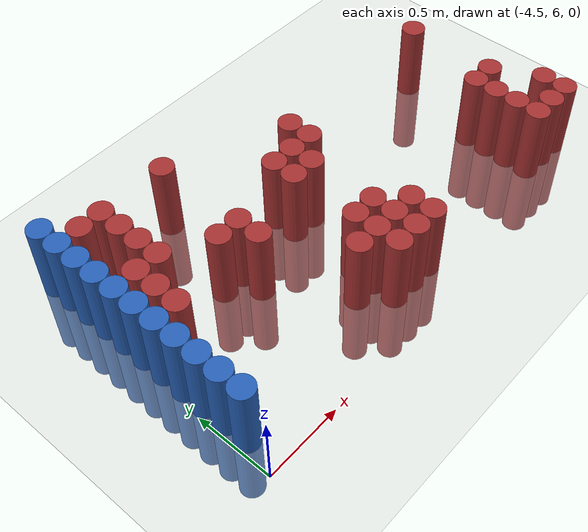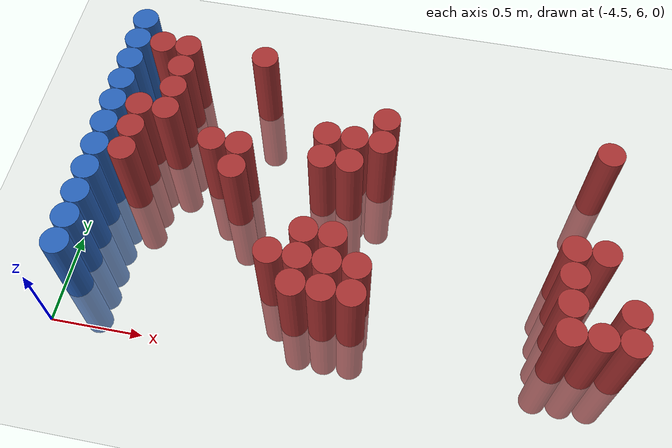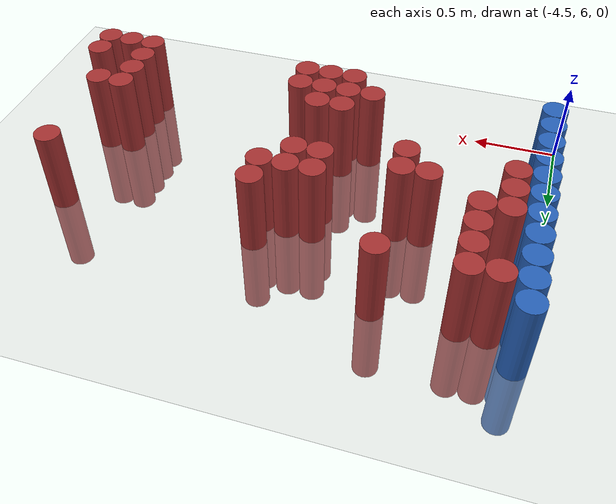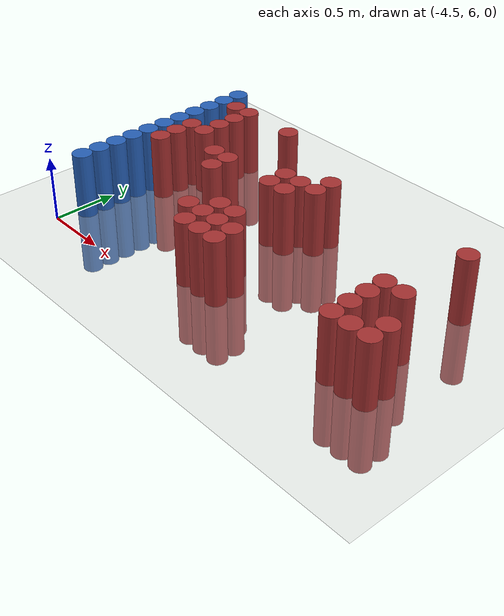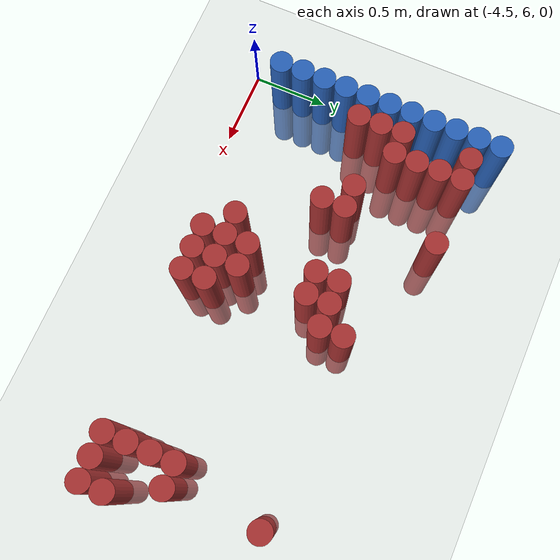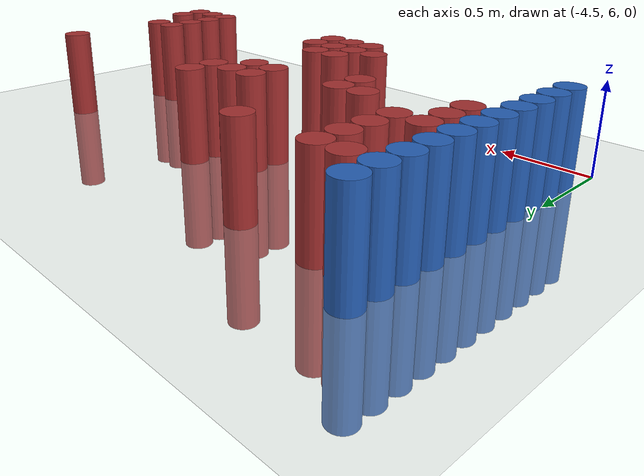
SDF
<sdf version="1.6">
 <world name="default">
  <model name="ground_plane">
   <static>1</static>
   <link name="link">
    <collision name="collision">
     <geometry><plane><normal>0 0 1</normal><size>100 100</size></plane></geometry>
     <surface><friction><ode><mu>100</mu><mu2>50</mu2></ode></friction></surface>
    </collision>
    <visual name="visual">
     <cast_shadows>0</cast_shadows>
     <geometry><plane><normal>0 0 1</normal><size>100 100</size></plane></geometry>
     <material>
      <script><uri>file://media/materials/scripts/gazebo.material</uri><name>Gazebo/Grey</name></script>
     </material>
    </visual>
   </link>
  </model>
  <model name="unit_cylinder_103">
   <static>1</static>
   <pose>-4.425000 6.225000 0.000000 0.000000 0.000000 0.000000</pose>
   <link name="link">
    <inertial>
     <mass>1</mass>
     <inertia><ixx>0.145833</ixx><ixy>0</ixy><ixz>0</ixz><iyy>0.145833</iyy><iyz>0</iyz><izz>0.125</izz></inertia>
    </inertial>
    <collision name="collision">
     <geometry><cylinder><radius>0.075000</radius><length>1</length></cylinder></geometry>
    </collision>
    <visual name="visual">
     <geometry><cylinder><radius>0.075000</radius><length>1</length></cylinder></geometry>
     <material>
      <ambient>0.152000 0.379000 0.720000 1</ambient>
      <diffuse>0.152000 0.379000 0.720000 1</diffuse>
     </material>
     <material>
      <script><name>Gazebo/Grey</name><uri>file://media/materials/scripts/gazebo.material</uri></script>
     </material>
    </visual>
   </link>
  </model>
  <model name="unit_cylinder_104">
   <static>1</static>
   <pose>-4.425000 6.375000 0.000000 0.000000 0.000000 0.000000</pose>
   <link name="link">
    <inertial>
     <mass>1</mass>
     <inertia><ixx>0.145833</ixx><ixy>0</ixy><ixz>0</ixz><iyy>0.145833</iyy><iyz>0</iyz><izz>0.125</izz></inertia>
    </inertial>
    <collision name="collision">
     <geometry><cylinder><radius>0.075000</radius><length>1</length></cylinder></geometry>
    </collision>
    <visual name="visual">
     <geometry><cylinder><radius>0.075000</radius><length>1</length></cylinder></geometry>
     <material>
      <ambient>0.152000 0.379000 0.720000 1</ambient>
      <diffuse>0.152000 0.379000 0.720000 1</diffuse>
     </material>
     <material>
      <script><name>Gazebo/Grey</name><uri>file://media/materials/scripts/gazebo.material</uri></script>
     </material>
    </visual>
   </link>
  </model>
  <model name="unit_cylinder_105">
   <static>1</static>
   <pose>-4.425000 6.525000 0.000000 0.000000 0.000000 0.000000</pose>
   <link name="link">
    <inertial>
     <mass>1</mass>
     <inertia><ixx>0.145833</ixx><ixy>0</ixy><ixz>0</ixz><iyy>0.145833</iyy><iyz>0</iyz><izz>0.125</izz></inertia>
    </inertial>
    <collision name="collision">
     <geometry><cylinder><radius>0.075000</radius><length>1</length></cylinder></geometry>
    </collision>
    <visual name="visual">
     <geometry><cylinder><radius>0.075000</radius><length>1</length></cylinder></geometry>
     <material>
      <ambient>0.152000 0.379000 0.720000 1</ambient>
      <diffuse>0.152000 0.379000 0.720000 1</diffuse>
     </material>
     <material>
      <script><name>Gazebo/Grey</name><uri>file://media/materials/scripts/gazebo.material</uri></script>
     </material>
    </visual>
   </link>
  </model>
  <model name="unit_cylinder_106">
   <static>1</static>
   <pose>-4.425000 6.675000 0.000000 0.000000 0.000000 0.000000</pose>
   <link name="link">
    <inertial>
     <mass>1</mass>
     <inertia><ixx>0.145833</ixx><ixy>0</ixy><ixz>0</ixz><iyy>0.145833</iyy><iyz>0</iyz><izz>0.125</izz></inertia>
    </inertial>
    <collision name="collision">
     <geometry><cylinder><radius>0.075000</radius><length>1</length></cylinder></geometry>
    </collision>
    <visual name="visual">
     <geometry><cylinder><radius>0.075000</radius><length>1</length></cylinder></geometry>
     <material>
      <ambient>0.152000 0.379000 0.720000 1</ambient>
      <diffuse>0.152000 0.379000 0.720000 1</diffuse>
     </material>
     <material>
      <script><name>Gazebo/Grey</name><uri>file://media/materials/scripts/gazebo.material</uri></script>
     </material>
    </visual>
   </link>
  </model>
  <model name="unit_cylinder_107">
   <static>1</static>
   <pose>-4.425000 6.825000 0.000000 0.000000 0.000000 0.000000</pose>
   <link name="link">
    <inertial>
     <mass>1</mass>
     <inertia><ixx>0.145833</ixx><ixy>0</ixy><ixz>0</ixz><iyy>0.145833</iyy><iyz>0</iyz><izz>0.125</izz></inertia>
    </inertial>
    <collision name="collision">
     <geometry><cylinder><radius>0.075000</radius><length>1</length></cylinder></geometry>
    </collision>
    <visual name="visual">
     <geometry><cylinder><radius>0.075000</radius><length>1</length></cylinder></geometry>
     <material>
      <ambient>0.152000 0.379000 0.720000 1</ambient>
      <diffuse>0.152000 0.379000 0.720000 1</diffuse>
     </material>
     <material>
      <script><name>Gazebo/Grey</name><uri>file://media/materials/scripts/gazebo.material</uri></script>
     </material>
    </visual>
   </link>
  </model>
  <model name="unit_cylinder_108">
   <static>1</static>
   <pose>-4.425000 6.975000 0.000000 0.000000 0.000000 0.000000</pose>
   <link name="link">
    <inertial>
     <mass>1</mass>
     <inertia><ixx>0.145833</ixx><ixy>0</ixy><ixz>0</ixz><iyy>0.145833</iyy><iyz>0</iyz><izz>0.125</izz></inertia>
    </inertial>
    <collision name="collision">
     <geometry><cylinder><radius>0.075000</radius><length>1</length></cylinder></geometry>
    </collision>
    <visual name="visual">
     <geometry><cylinder><radius>0.075000</radius><length>1</length></cylinder></geometry>
     <material>
      <ambient>0.152000 0.379000 0.720000 1</ambient>
      <diffuse>0.152000 0.379000 0.720000 1</diffuse>
     </material>
     <material>
      <script><name>Gazebo/Grey</name><uri>file://media/materials/scripts/gazebo.material</uri></script>
     </material>
    </visual>
   </link>
  </model>
  <model name="unit_cylinder_109">
   <static>1</static>
   <pose>-4.425000 7.125000 0.000000 0.000000 0.000000 0.000000</pose>
   <link name="link">
    <inertial>
     <mass>1</mass>
     <inertia><ixx>0.145833</ixx><ixy>0</ixy><ixz>0</ixz><iyy>0.145833</iyy><iyz>0</iyz><izz>0.125</izz></inertia>
    </inertial>
    <collision name="collision">
     <geometry><cylinder><radius>0.075000</radius><length>1</length></cylinder></geometry>
    </collision>
    <visual name="visual">
     <geometry><cylinder><radius>0.075000</radius><length>1</length></cylinder></geometry>
     <material>
      <ambient>0.152000 0.379000 0.720000 1</ambient>
      <diffuse>0.152000 0.379000 0.720000 1</diffuse>
     </material>
     <material>
      <script><name>Gazebo/Grey</name><uri>file://media/materials/scripts/gazebo.material</uri></script>
     </material>
    </visual>
   </link>
  </model>
  <model name="unit_cylinder_110">
   <static>1</static>
   <pose>-4.425000 7.275000 0.000000 0.000000 0.000000 0.000000</pose>
   <link name="link">
    <inertial>
     <mass>1</mass>
     <inertia><ixx>0.145833</ixx><ixy>0</ixy><ixz>0</ixz><iyy>0.145833</iyy><iyz>0</iyz><izz>0.125</izz></inertia>
    </inertial>
    <collision name="collision">
     <geometry><cylinder><radius>0.075000</radius><length>1</length></cylinder></geometry>
    </collision>
    <visual name="visual">
     <geometry><cylinder><radius>0.075000</radius><length>1</length></cylinder></geometry>
     <material>
      <ambient>0.152000 0.379000 0.720000 1</ambient>
      <diffuse>0.152000 0.379000 0.720000 1</diffuse>
     </material>
     <material>
      <script><name>Gazebo/Grey</name><uri>file://media/materials/scripts/gazebo.material</uri></script>
     </material>
    </visual>
   </link>
  </model>
  <model name="unit_cylinder_111">
   <static>1</static>
   <pose>-4.425000 7.425000 0.000000 0.000000 0.000000 0.000000</pose>
   <link name="link">
    <inertial>
     <mass>1</mass>
     <inertia><ixx>0.145833</ixx><ixy>0</ixy><ixz>0</ixz><iyy>0.145833</iyy><iyz>0</iyz><izz>0.125</izz></inertia>
    </inertial>
    <collision name="collision">
     <geometry><cylinder><radius>0.075000</radius><length>1</length></cylinder></geometry>
    </collision>
    <visual name="visual">
     <geometry><cylinder><radius>0.075000</radius><length>1</length></cylinder></geometry>
     <material>
      <ambient>0.152000 0.379000 0.720000 1</ambient>
      <diffuse>0.152000 0.379000 0.720000 1</diffuse>
     </material>
     <material>
      <script><name>Gazebo/Grey</name><uri>file://media/materials/scripts/gazebo.material</uri></script>
     </material>
    </visual>
   </link>
  </model>
  <model name="unit_cylinder_112">
   <static>1</static>
   <pose>-4.425000 7.575000 0.000000 0.000000 0.000000 0.000000</pose>
   <link name="link">
    <inertial>
     <mass>1</mass>
     <inertia><ixx>0.145833</ixx><ixy>0</ixy><ixz>0</ixz><iyy>0.145833</iyy><iyz>0</iyz><izz>0.125</izz></inertia>
    </inertial>
    <collision name="collision">
     <geometry><cylinder><radius>0.075000</radius><length>1</length></cylinder></geometry>
    </collision>
    <visual name="visual">
     <geometry><cylinder><radius>0.075000</radius><length>1</length></cylinder></geometry>
     <material>
      <ambient>0.152000 0.379000 0.720000 1</ambient>
      <diffuse>0.152000 0.379000 0.720000 1</diffuse>
     </material>
     <material>
      <script><name>Gazebo/Grey</name><uri>file://media/materials/scripts/gazebo.material</uri></script>
     </material>
    </visual>
   </link>
  </model>
  <model name="unit_cylinder_113">
   <static>1</static>
   <pose>-4.425000 7.725000 0.000000 0.000000 0.000000 0.000000</pose>
   <link name="link">
    <inertial>
     <mass>1</mass>
     <inertia><ixx>0.145833</ixx><ixy>0</ixy><ixz>0</ixz><iyy>0.145833</iyy><iyz>0</iyz><izz>0.125</izz></inertia>
    </inertial>
    <collision name="collision">
     <geometry><cylinder><radius>0.075000</radius><length>1</length></cylinder></geometry>
    </collision>
    <visual name="visual">
     <geometry><cylinder><radius>0.075000</radius><length>1</length></cylinder></geometry>
     <material>
      <ambient>0.152000 0.379000 0.720000 1</ambient>
      <diffuse>0.152000 0.379000 0.720000 1</diffuse>
     </material>
     <material>
      <script><name>Gazebo/Grey</name><uri>file://media/materials/scripts/gazebo.material</uri></script>
     </material>
    </visual>
   </link>
  </model>
  <model name="unit_cylinder_130">
   <static>1</static>
   <pose>-4.275000 6.825000 0.000000 0.000000 0.000000 0.000000</pose>
   <link name="link">
    <inertial>
     <mass>1</mass>
     <inertia><ixx>0.145833</ixx><ixy>0</ixy><ixz>0</ixz><iyy>0.145833</iyy><iyz>0</iyz><izz>0.125</izz></inertia>
    </inertial>
    <collision name="collision">
     <geometry><cylinder><radius>0.075000</radius><length>1</length></cylinder></geometry>
    </collision>
    <visual name="visual">
     <geometry><cylinder><radius>0.075000</radius><length>1</length></cylinder></geometry>
     <material>
      <ambient>0.648000 0.192000 0.192000 1</ambient>
      <diffuse>0.648000 0.192000 0.192000 1</diffuse>
     </material>
     <material>
      <script><name>Gazebo/Grey</name><uri>file://media/materials/scripts/gazebo.material</uri></script>
     </material>
    </visual>
   </link>
  </model>
  <model name="unit_cylinder_131">
   <static>1</static>
   <pose>-4.275000 6.975000 0.000000 0.000000 0.000000 0.000000</pose>
   <link name="link">
    <inertial>
     <mass>1</mass>
     <inertia><ixx>0.145833</ixx><ixy>0</ixy><ixz>0</ixz><iyy>0.145833</iyy><iyz>0</iyz><izz>0.125</izz></inertia>
    </inertial>
    <collision name="collision">
     <geometry><cylinder><radius>0.075000</radius><length>1</length></cylinder></geometry>
    </collision>
    <visual name="visual">
     <geometry><cylinder><radius>0.075000</radius><length>1</length></cylinder></geometry>
     <material>
      <ambient>0.648000 0.192000 0.192000 1</ambient>
      <diffuse>0.648000 0.192000 0.192000 1</diffuse>
     </material>
     <material>
      <script><name>Gazebo/Grey</name><uri>file://media/materials/scripts/gazebo.material</uri></script>
     </material>
    </visual>
   </link>
  </model>
  <model name="unit_cylinder_132">
   <static>1</static>
   <pose>-4.275000 7.125000 0.000000 0.000000 0.000000 0.000000</pose>
   <link name="link">
    <inertial>
     <mass>1</mass>
     <inertia><ixx>0.145833</ixx><ixy>0</ixy><ixz>0</ixz><iyy>0.145833</iyy><iyz>0</iyz><izz>0.125</izz></inertia>
    </inertial>
    <collision name="collision">
     <geometry><cylinder><radius>0.075000</radius><length>1</length></cylinder></geometry>
    </collision>
    <visual name="visual">
     <geometry><cylinder><radius>0.075000</radius><length>1</length></cylinder></geometry>
     <material>
      <ambient>0.648000 0.192000 0.192000 1</ambient>
      <diffuse>0.648000 0.192000 0.192000 1</diffuse>
     </material>
     <material>
      <script><name>Gazebo/Grey</name><uri>file://media/materials/scripts/gazebo.material</uri></script>
     </material>
    </visual>
   </link>
  </model>
  <model name="unit_cylinder_133">
   <static>1</static>
   <pose>-4.275000 7.575000 0.000000 0.000000 0.000000 0.000000</pose>
   <link name="link">
    <inertial>
     <mass>1</mass>
     <inertia><ixx>0.145833</ixx><ixy>0</ixy><ixz>0</ixz><iyy>0.145833</iyy><iyz>0</iyz><izz>0.125</izz></inertia>
    </inertial>
    <collision name="collision">
     <geometry><cylinder><radius>0.075000</radius><length>1</length></cylinder></geometry>
    </collision>
    <visual name="visual">
     <geometry><cylinder><radius>0.075000</radius><length>1</length></cylinder></geometry>
     <material>
      <ambient>0.648000 0.192000 0.192000 1</ambient>
      <diffuse>0.648000 0.192000 0.192000 1</diffuse>
     </material>
     <material>
      <script><name>Gazebo/Grey</name><uri>file://media/materials/scripts/gazebo.material</uri></script>
     </material>
    </visual>
   </link>
  </model>
  <model name="unit_cylinder_143">
   <static>1</static>
   <pose>-4.125000 7.125000 0.000000 0.000000 0.000000 0.000000</pose>
   <link name="link">
    <inertial>
     <mass>1</mass>
     <inertia><ixx>0.145833</ixx><ixy>0</ixy><ixz>0</ixz><iyy>0.145833</iyy><iyz>0</iyz><izz>0.125</izz></inertia>
    </inertial>
    <collision name="collision">
     <geometry><cylinder><radius>0.075000</radius><length>1</length></cylinder></geometry>
    </collision>
    <visual name="visual">
     <geometry><cylinder><radius>0.075000</radius><length>1</length></cylinder></geometry>
     <material>
      <ambient>0.648000 0.192000 0.192000 1</ambient>
      <diffuse>0.648000 0.192000 0.192000 1</diffuse>
     </material>
     <material>
      <script><name>Gazebo/Grey</name><uri>file://media/materials/scripts/gazebo.material</uri></script>
     </material>
    </visual>
   </link>
  </model>
  <model name="unit_cylinder_144">
   <static>1</static>
   <pose>-4.125000 7.275000 0.000000 0.000000 0.000000 0.000000</pose>
   <link name="link">
    <inertial>
     <mass>1</mass>
     <inertia><ixx>0.145833</ixx><ixy>0</ixy><ixz>0</ixz><iyy>0.145833</iyy><iyz>0</iyz><izz>0.125</izz></inertia>
    </inertial>
    <collision name="collision">
     <geometry><cylinder><radius>0.075000</radius><length>1</length></cylinder></geometry>
    </collision>
    <visual name="visual">
     <geometry><cylinder><radius>0.075000</radius><length>1</length></cylinder></geometry>
     <material>
      <ambient>0.648000 0.192000 0.192000 1</ambient>
      <diffuse>0.648000 0.192000 0.192000 1</diffuse>
     </material>
     <material>
      <script><name>Gazebo/Grey</name><uri>file://media/materials/scripts/gazebo.material</uri></script>
     </material>
    </visual>
   </link>
  </model>
  <model name="unit_cylinder_145">
   <static>1</static>
   <pose>-4.125000 7.425000 0.000000 0.000000 0.000000 0.000000</pose>
   <link name="link">
    <inertial>
     <mass>1</mass>
     <inertia><ixx>0.145833</ixx><ixy>0</ixy><ixz>0</ixz><iyy>0.145833</iyy><iyz>0</iyz><izz>0.125</izz></inertia>
    </inertial>
    <collision name="collision">
     <geometry><cylinder><radius>0.075000</radius><length>1</length></cylinder></geometry>
    </collision>
    <visual name="visual">
     <geometry><cylinder><radius>0.075000</radius><length>1</length></cylinder></geometry>
     <material>
      <ambient>0.648000 0.192000 0.192000 1</ambient>
      <diffuse>0.648000 0.192000 0.192000 1</diffuse>
     </material>
     <material>
      <script><name>Gazebo/Grey</name><uri>file://media/materials/scripts/gazebo.material</uri></script>
     </material>
    </visual>
   </link>
  </model>
  <model name="unit_cylinder_146">
   <static>1</static>
   <pose>-4.125000 7.575000 0.000000 0.000000 0.000000 0.000000</pose>
   <link name="link">
    <inertial>
     <mass>1</mass>
     <inertia><ixx>0.145833</ixx><ixy>0</ixy><ixz>0</ixz><iyy>0.145833</iyy><iyz>0</iyz><izz>0.125</izz></inertia>
    </inertial>
    <collision name="collision">
     <geometry><cylinder><radius>0.075000</radius><length>1</length></cylinder></geometry>
    </collision>
    <visual name="visual">
     <geometry><cylinder><radius>0.075000</radius><length>1</length></cylinder></geometry>
     <material>
      <ambient>0.648000 0.192000 0.192000 1</ambient>
      <diffuse>0.648000 0.192000 0.192000 1</diffuse>
     </material>
     <material>
      <script><name>Gazebo/Grey</name><uri>file://media/materials/scripts/gazebo.material</uri></script>
     </material>
    </visual>
   </link>
  </model>
  <model name="unit_cylinder_148">
   <static>1</static>
   <pose>-3.825000 6.975000 0.000000 0.000000 0.000000 0.000000</pose>
   <link name="link">
    <inertial>
     <mass>1</mass>
     <inertia><ixx>0.145833</ixx><ixy>0</ixy><ixz>0</ixz><iyy>0.145833</iyy><iyz>0</iyz><izz>0.125</izz></inertia>
    </inertial>
    <collision name="collision">
     <geometry><cylinder><radius>0.075000</radius><length>1</length></cylinder></geometry>
    </collision>
    <visual name="visual">
     <geometry><cylinder><radius>0.075000</radius><length>1</length></cylinder></geometry>
     <material>
      <ambient>0.648000 0.192000 0.192000 1</ambient>
      <diffuse>0.648000 0.192000 0.192000 1</diffuse>
     </material>
     <material>
      <script><name>Gazebo/Grey</name><uri>file://media/materials/scripts/gazebo.material</uri></script>
     </material>
    </visual>
   </link>
  </model>
  <model name="unit_cylinder_152">
   <static>1</static>
   <pose>-3.675000 6.825000 0.000000 0.000000 0.000000 0.000000</pose>
   <link name="link">
    <inertial>
     <mass>1</mass>
     <inertia><ixx>0.145833</ixx><ixy>0</ixy><ixz>0</ixz><iyy>0.145833</iyy><iyz>0</iyz><izz>0.125</izz></inertia>
    </inertial>
    <collision name="collision">
     <geometry><cylinder><radius>0.075000</radius><length>1</length></cylinder></geometry>
    </collision>
    <visual name="visual">
     <geometry><cylinder><radius>0.075000</radius><length>1</length></cylinder></geometry>
     <material>
      <ambient>0.648000 0.192000 0.192000 1</ambient>
      <diffuse>0.648000 0.192000 0.192000 1</diffuse>
     </material>
     <material>
      <script><name>Gazebo/Grey</name><uri>file://media/materials/scripts/gazebo.material</uri></script>
     </material>
    </visual>
   </link>
  </model>
  <model name="unit_cylinder_153">
   <static>1</static>
   <pose>-3.675000 6.975000 0.000000 0.000000 0.000000 0.000000</pose>
   <link name="link">
    <inertial>
     <mass>1</mass>
     <inertia><ixx>0.145833</ixx><ixy>0</ixy><ixz>0</ixz><iyy>0.145833</iyy><iyz>0</iyz><izz>0.125</izz></inertia>
    </inertial>
    <collision name="collision">
     <geometry><cylinder><radius>0.075000</radius><length>1</length></cylinder></geometry>
    </collision>
    <visual name="visual">
     <geometry><cylinder><radius>0.075000</radius><length>1</length></cylinder></geometry>
     <material>
      <ambient>0.648000 0.192000 0.192000 1</ambient>
      <diffuse>0.648000 0.192000 0.192000 1</diffuse>
     </material>
     <material>
      <script><name>Gazebo/Grey</name><uri>file://media/materials/scripts/gazebo.material</uri></script>
     </material>
    </visual>
   </link>
  </model>
  <model name="unit_cylinder_154">
   <static>1</static>
   <pose>-3.675000 7.575000 0.000000 0.000000 0.000000 0.000000</pose>
   <link name="link">
    <inertial>
     <mass>1</mass>
     <inertia><ixx>0.145833</ixx><ixy>0</ixy><ixz>0</ixz><iyy>0.145833</iyy><iyz>0</iyz><izz>0.125</izz></inertia>
    </inertial>
    <collision name="collision">
     <geometry><cylinder><radius>0.075000</radius><length>1</length></cylinder></geometry>
    </collision>
    <visual name="visual">
     <geometry><cylinder><radius>0.075000</radius><length>1</length></cylinder></geometry>
     <material>
      <ambient>0.648000 0.192000 0.192000 1</ambient>
      <diffuse>0.648000 0.192000 0.192000 1</diffuse>
     </material>
     <material>
      <script><name>Gazebo/Grey</name><uri>file://media/materials/scripts/gazebo.material</uri></script>
     </material>
    </visual>
   </link>
  </model>
  <model name="unit_cylinder_171">
   <static>1</static>
   <pose>-3.375000 6.375000 0.000000 0.000000 0.000000 0.000000</pose>
   <link name="link">
    <inertial>
     <mass>1</mass>
     <inertia><ixx>0.145833</ixx><ixy>0</ixy><ixz>0</ixz><iyy>0.145833</iyy><iyz>0</iyz><izz>0.125</izz></inertia>
    </inertial>
    <collision name="collision">
     <geometry><cylinder><radius>0.075000</radius><length>1</length></cylinder></geometry>
    </collision>
    <visual name="visual">
     <geometry><cylinder><radius>0.075000</radius><length>1</length></cylinder></geometry>
     <material>
      <ambient>0.648000 0.192000 0.192000 1</ambient>
      <diffuse>0.648000 0.192000 0.192000 1</diffuse>
     </material>
     <material>
      <script><name>Gazebo/Grey</name><uri>file://media/materials/scripts/gazebo.material</uri></script>
     </material>
    </visual>
   </link>
  </model>
  <model name="unit_cylinder_181">
   <static>1</static>
   <pose>-3.225000 6.225000 0.000000 0.000000 0.000000 0.000000</pose>
   <link name="link">
    <inertial>
     <mass>1</mass>
     <inertia><ixx>0.145833</ixx><ixy>0</ixy><ixz>0</ixz><iyy>0.145833</iyy><iyz>0</iyz><izz>0.125</izz></inertia>
    </inertial>
    <collision name="collision">
     <geometry><cylinder><radius>0.075000</radius><length>1</length></cylinder></geometry>
    </collision>
    <visual name="visual">
     <geometry><cylinder><radius>0.075000</radius><length>1</length></cylinder></geometry>
     <material>
      <ambient>0.648000 0.192000 0.192000 1</ambient>
      <diffuse>0.648000 0.192000 0.192000 1</diffuse>
     </material>
     <material>
      <script><name>Gazebo/Grey</name><uri>file://media/materials/scripts/gazebo.material</uri></script>
     </material>
    </visual>
   </link>
  </model>
  <model name="unit_cylinder_182">
   <static>1</static>
   <pose>-3.225000 6.375000 0.000000 0.000000 0.000000 0.000000</pose>
   <link name="link">
    <inertial>
     <mass>1</mass>
     <inertia><ixx>0.145833</ixx><ixy>0</ixy><ixz>0</ixz><iyy>0.145833</iyy><iyz>0</iyz><izz>0.125</izz></inertia>
    </inertial>
    <collision name="collision">
     <geometry><cylinder><radius>0.075000</radius><length>1</length></cylinder></geometry>
    </collision>
    <visual name="visual">
     <geometry><cylinder><radius>0.075000</radius><length>1</length></cylinder></geometry>
     <material>
      <ambient>0.648000 0.192000 0.192000 1</ambient>
      <diffuse>0.648000 0.192000 0.192000 1</diffuse>
     </material>
     <material>
      <script><name>Gazebo/Grey</name><uri>file://media/materials/scripts/gazebo.material</uri></script>
     </material>
    </visual>
   </link>
  </model>
  <model name="unit_cylinder_183">
   <static>1</static>
   <pose>-3.225000 6.525000 0.000000 0.000000 0.000000 0.000000</pose>
   <link name="link">
    <inertial>
     <mass>1</mass>
     <inertia><ixx>0.145833</ixx><ixy>0</ixy><ixz>0</ixz><iyy>0.145833</iyy><iyz>0</iyz><izz>0.125</izz></inertia>
    </inertial>
    <collision name="collision">
     <geometry><cylinder><radius>0.075000</radius><length>1</length></cylinder></geometry>
    </collision>
    <visual name="visual">
     <geometry><cylinder><radius>0.075000</radius><length>1</length></cylinder></geometry>
     <material>
      <ambient>0.648000 0.192000 0.192000 1</ambient>
      <diffuse>0.648000 0.192000 0.192000 1</diffuse>
     </material>
     <material>
      <script><name>Gazebo/Grey</name><uri>file://media/materials/scripts/gazebo.material</uri></script>
     </material>
    </visual>
   </link>
  </model>
  <model name="unit_cylinder_184">
   <static>1</static>
   <pose>-3.225000 6.975000 0.000000 0.000000 0.000000 0.000000</pose>
   <link name="link">
    <inertial>
     <mass>1</mass>
     <inertia><ixx>0.145833</ixx><ixy>0</ixy><ixz>0</ixz><iyy>0.145833</iyy><iyz>0</iyz><izz>0.125</izz></inertia>
    </inertial>
    <collision name="collision">
     <geometry><cylinder><radius>0.075000</radius><length>1</length></cylinder></geometry>
    </collision>
    <visual name="visual">
     <geometry><cylinder><radius>0.075000</radius><length>1</length></cylinder></geometry>
     <material>
      <ambient>0.648000 0.192000 0.192000 1</ambient>
      <diffuse>0.648000 0.192000 0.192000 1</diffuse>
     </material>
     <material>
      <script><name>Gazebo/Grey</name><uri>file://media/materials/scripts/gazebo.material</uri></script>
     </material>
    </visual>
   </link>
  </model>
  <model name="unit_cylinder_185">
   <static>1</static>
   <pose>-3.225000 7.125000 0.000000 0.000000 0.000000 0.000000</pose>
   <link name="link">
    <inertial>
     <mass>1</mass>
     <inertia><ixx>0.145833</ixx><ixy>0</ixy><ixz>0</ixz><iyy>0.145833</iyy><iyz>0</iyz><izz>0.125</izz></inertia>
    </inertial>
    <collision name="collision">
     <geometry><cylinder><radius>0.075000</radius><length>1</length></cylinder></geometry>
    </collision>
    <visual name="visual">
     <geometry><cylinder><radius>0.075000</radius><length>1</length></cylinder></geometry>
     <material>
      <ambient>0.648000 0.192000 0.192000 1</ambient>
      <diffuse>0.648000 0.192000 0.192000 1</diffuse>
     </material>
     <material>
      <script><name>Gazebo/Grey</name><uri>file://media/materials/scripts/gazebo.material</uri></script>
     </material>
    </visual>
   </link>
  </model>
  <model name="unit_cylinder_190">
   <static>1</static>
   <pose>-3.075000 6.225000 0.000000 0.000000 0.000000 0.000000</pose>
   <link name="link">
    <inertial>
     <mass>1</mass>
     <inertia><ixx>0.145833</ixx><ixy>0</ixy><ixz>0</ixz><iyy>0.145833</iyy><iyz>0</iyz><izz>0.125</izz></inertia>
    </inertial>
    <collision name="collision">
     <geometry><cylinder><radius>0.075000</radius><length>1</length></cylinder></geometry>
    </collision>
    <visual name="visual">
     <geometry><cylinder><radius>0.075000</radius><length>1</length></cylinder></geometry>
     <material>
      <ambient>0.648000 0.192000 0.192000 1</ambient>
      <diffuse>0.648000 0.192000 0.192000 1</diffuse>
     </material>
     <material>
      <script><name>Gazebo/Grey</name><uri>file://media/materials/scripts/gazebo.material</uri></script>
     </material>
    </visual>
   </link>
  </model>
  <model name="unit_cylinder_191">
   <static>1</static>
   <pose>-3.075000 6.375000 0.000000 0.000000 0.000000 0.000000</pose>
   <link name="link">
    <inertial>
     <mass>1</mass>
     <inertia><ixx>0.145833</ixx><ixy>0</ixy><ixz>0</ixz><iyy>0.145833</iyy><iyz>0</iyz><izz>0.125</izz></inertia>
    </inertial>
    <collision name="collision">
     <geometry><cylinder><radius>0.075000</radius><length>1</length></cylinder></geometry>
    </collision>
    <visual name="visual">
     <geometry><cylinder><radius>0.075000</radius><length>1</length></cylinder></geometry>
     <material>
      <ambient>0.648000 0.192000 0.192000 1</ambient>
      <diffuse>0.648000 0.192000 0.192000 1</diffuse>
     </material>
     <material>
      <script><name>Gazebo/Grey</name><uri>file://media/materials/scripts/gazebo.material</uri></script>
     </material>
    </visual>
   </link>
  </model>
  <model name="unit_cylinder_192">
   <static>1</static>
   <pose>-3.075000 6.525000 0.000000 0.000000 0.000000 0.000000</pose>
   <link name="link">
    <inertial>
     <mass>1</mass>
     <inertia><ixx>0.145833</ixx><ixy>0</ixy><ixz>0</ixz><iyy>0.145833</iyy><iyz>0</iyz><izz>0.125</izz></inertia>
    </inertial>
    <collision name="collision">
     <geometry><cylinder><radius>0.075000</radius><length>1</length></cylinder></geometry>
    </collision>
    <visual name="visual">
     <geometry><cylinder><radius>0.075000</radius><length>1</length></cylinder></geometry>
     <material>
      <ambient>0.648000 0.192000 0.192000 1</ambient>
      <diffuse>0.648000 0.192000 0.192000 1</diffuse>
     </material>
     <material>
      <script><name>Gazebo/Grey</name><uri>file://media/materials/scripts/gazebo.material</uri></script>
     </material>
    </visual>
   </link>
  </model>
  <model name="unit_cylinder_193">
   <static>1</static>
   <pose>-3.075000 6.975000 0.000000 0.000000 0.000000 0.000000</pose>
   <link name="link">
    <inertial>
     <mass>1</mass>
     <inertia><ixx>0.145833</ixx><ixy>0</ixy><ixz>0</ixz><iyy>0.145833</iyy><iyz>0</iyz><izz>0.125</izz></inertia>
    </inertial>
    <collision name="collision">
     <geometry><cylinder><radius>0.075000</radius><length>1</length></cylinder></geometry>
    </collision>
    <visual name="visual">
     <geometry><cylinder><radius>0.075000</radius><length>1</length></cylinder></geometry>
     <material>
      <ambient>0.648000 0.192000 0.192000 1</ambient>
      <diffuse>0.648000 0.192000 0.192000 1</diffuse>
     </material>
     <material>
      <script><name>Gazebo/Grey</name><uri>file://media/materials/scripts/gazebo.material</uri></script>
     </material>
    </visual>
   </link>
  </model>
  <model name="unit_cylinder_194">
   <static>1</static>
   <pose>-3.075000 7.125000 0.000000 0.000000 0.000000 0.000000</pose>
   <link name="link">
    <inertial>
     <mass>1</mass>
     <inertia><ixx>0.145833</ixx><ixy>0</ixy><ixz>0</ixz><iyy>0.145833</iyy><iyz>0</iyz><izz>0.125</izz></inertia>
    </inertial>
    <collision name="collision">
     <geometry><cylinder><radius>0.075000</radius><length>1</length></cylinder></geometry>
    </collision>
    <visual name="visual">
     <geometry><cylinder><radius>0.075000</radius><length>1</length></cylinder></geometry>
     <material>
      <ambient>0.648000 0.192000 0.192000 1</ambient>
      <diffuse>0.648000 0.192000 0.192000 1</diffuse>
     </material>
     <material>
      <script><name>Gazebo/Grey</name><uri>file://media/materials/scripts/gazebo.material</uri></script>
     </material>
    </visual>
   </link>
  </model>
  <model name="unit_cylinder_196">
   <static>1</static>
   <pose>-2.925000 6.225000 0.000000 0.000000 0.000000 0.000000</pose>
   <link name="link">
    <inertial>
     <mass>1</mass>
     <inertia><ixx>0.145833</ixx><ixy>0</ixy><ixz>0</ixz><iyy>0.145833</iyy><iyz>0</iyz><izz>0.125</izz></inertia>
    </inertial>
    <collision name="collision">
     <geometry><cylinder><radius>0.075000</radius><length>1</length></cylinder></geometry>
    </collision>
    <visual name="visual">
     <geometry><cylinder><radius>0.075000</radius><length>1</length></cylinder></geometry>
     <material>
      <ambient>0.648000 0.192000 0.192000 1</ambient>
      <diffuse>0.648000 0.192000 0.192000 1</diffuse>
     </material>
     <material>
      <script><name>Gazebo/Grey</name><uri>file://media/materials/scripts/gazebo.material</uri></script>
     </material>
    </visual>
   </link>
  </model>
  <model name="unit_cylinder_197">
   <static>1</static>
   <pose>-2.925000 6.375000 0.000000 0.000000 0.000000 0.000000</pose>
   <link name="link">
    <inertial>
     <mass>1</mass>
     <inertia><ixx>0.145833</ixx><ixy>0</ixy><ixz>0</ixz><iyy>0.145833</iyy><iyz>0</iyz><izz>0.125</izz></inertia>
    </inertial>
    <collision name="collision">
     <geometry><cylinder><radius>0.075000</radius><length>1</length></cylinder></geometry>
    </collision>
    <visual name="visual">
     <geometry><cylinder><radius>0.075000</radius><length>1</length></cylinder></geometry>
     <material>
      <ambient>0.648000 0.192000 0.192000 1</ambient>
      <diffuse>0.648000 0.192000 0.192000 1</diffuse>
     </material>
     <material>
      <script><name>Gazebo/Grey</name><uri>file://media/materials/scripts/gazebo.material</uri></script>
     </material>
    </visual>
   </link>
  </model>
  <model name="unit_cylinder_198">
   <static>1</static>
   <pose>-2.925000 7.125000 0.000000 0.000000 0.000000 0.000000</pose>
   <link name="link">
    <inertial>
     <mass>1</mass>
     <inertia><ixx>0.145833</ixx><ixy>0</ixy><ixz>0</ixz><iyy>0.145833</iyy><iyz>0</iyz><izz>0.125</izz></inertia>
    </inertial>
    <collision name="collision">
     <geometry><cylinder><radius>0.075000</radius><length>1</length></cylinder></geometry>
    </collision>
    <visual name="visual">
     <geometry><cylinder><radius>0.075000</radius><length>1</length></cylinder></geometry>
     <material>
      <ambient>0.648000 0.192000 0.192000 1</ambient>
      <diffuse>0.648000 0.192000 0.192000 1</diffuse>
     </material>
     <material>
      <script><name>Gazebo/Grey</name><uri>file://media/materials/scripts/gazebo.material</uri></script>
     </material>
    </visual>
   </link>
  </model>
  <model name="unit_cylinder_199">
   <static>1</static>
   <pose>-2.925000 7.275000 0.000000 0.000000 0.000000 0.000000</pose>
   <link name="link">
    <inertial>
     <mass>1</mass>
     <inertia><ixx>0.145833</ixx><ixy>0</ixy><ixz>0</ixz><iyy>0.145833</iyy><iyz>0</iyz><izz>0.125</izz></inertia>
    </inertial>
    <collision name="collision">
     <geometry><cylinder><radius>0.075000</radius><length>1</length></cylinder></geometry>
    </collision>
    <visual name="visual">
     <geometry><cylinder><radius>0.075000</radius><length>1</length></cylinder></geometry>
     <material>
      <ambient>0.648000 0.192000 0.192000 1</ambient>
      <diffuse>0.648000 0.192000 0.192000 1</diffuse>
     </material>
     <material>
      <script><name>Gazebo/Grey</name><uri>file://media/materials/scripts/gazebo.material</uri></script>
     </material>
    </visual>
   </link>
  </model>
  <model name="unit_cylinder_211">
   <static>1</static>
   <pose>-1.875000 6.225000 0.000000 0.000000 0.000000 0.000000</pose>
   <link name="link">
    <inertial>
     <mass>1</mass>
     <inertia><ixx>0.145833</ixx><ixy>0</ixy><ixz>0</ixz><iyy>0.145833</iyy><iyz>0</iyz><izz>0.125</izz></inertia>
    </inertial>
    <collision name="collision">
     <geometry><cylinder><radius>0.075000</radius><length>1</length></cylinder></geometry>
    </collision>
    <visual name="visual">
     <geometry><cylinder><radius>0.075000</radius><length>1</length></cylinder></geometry>
     <material>
      <ambient>0.648000 0.192000 0.192000 1</ambient>
      <diffuse>0.648000 0.192000 0.192000 1</diffuse>
     </material>
     <material>
      <script><name>Gazebo/Grey</name><uri>file://media/materials/scripts/gazebo.material</uri></script>
     </material>
    </visual>
   </link>
  </model>
  <model name="unit_cylinder_212">
   <static>1</static>
   <pose>-1.875000 6.375000 0.000000 0.000000 0.000000 0.000000</pose>
   <link name="link">
    <inertial>
     <mass>1</mass>
     <inertia><ixx>0.145833</ixx><ixy>0</ixy><ixz>0</ixz><iyy>0.145833</iyy><iyz>0</iyz><izz>0.125</izz></inertia>
    </inertial>
    <collision name="collision">
     <geometry><cylinder><radius>0.075000</radius><length>1</length></cylinder></geometry>
    </collision>
    <visual name="visual">
     <geometry><cylinder><radius>0.075000</radius><length>1</length></cylinder></geometry>
     <material>
      <ambient>0.648000 0.192000 0.192000 1</ambient>
      <diffuse>0.648000 0.192000 0.192000 1</diffuse>
     </material>
     <material>
      <script><name>Gazebo/Grey</name><uri>file://media/materials/scripts/gazebo.material</uri></script>
     </material>
    </visual>
   </link>
  </model>
  <model name="unit_cylinder_213">
   <static>1</static>
   <pose>-1.875000 6.525000 0.000000 0.000000 0.000000 0.000000</pose>
   <link name="link">
    <inertial>
     <mass>1</mass>
     <inertia><ixx>0.145833</ixx><ixy>0</ixy><ixz>0</ixz><iyy>0.145833</iyy><iyz>0</iyz><izz>0.125</izz></inertia>
    </inertial>
    <collision name="collision">
     <geometry><cylinder><radius>0.075000</radius><length>1</length></cylinder></geometry>
    </collision>
    <visual name="visual">
     <geometry><cylinder><radius>0.075000</radius><length>1</length></cylinder></geometry>
     <material>
      <ambient>0.648000 0.192000 0.192000 1</ambient>
      <diffuse>0.648000 0.192000 0.192000 1</diffuse>
     </material>
     <material>
      <script><name>Gazebo/Grey</name><uri>file://media/materials/scripts/gazebo.material</uri></script>
     </material>
    </visual>
   </link>
  </model>
  <model name="unit_cylinder_214">
   <static>1</static>
   <pose>-1.875000 6.675000 0.000000 0.000000 0.000000 0.000000</pose>
   <link name="link">
    <inertial>
     <mass>1</mass>
     <inertia><ixx>0.145833</ixx><ixy>0</ixy><ixz>0</ixz><iyy>0.145833</iyy><iyz>0</iyz><izz>0.125</izz></inertia>
    </inertial>
    <collision name="collision">
     <geometry><cylinder><radius>0.075000</radius><length>1</length></cylinder></geometry>
    </collision>
    <visual name="visual">
     <geometry><cylinder><radius>0.075000</radius><length>1</length></cylinder></geometry>
     <material>
      <ambient>0.648000 0.192000 0.192000 1</ambient>
      <diffuse>0.648000 0.192000 0.192000 1</diffuse>
     </material>
     <material>
      <script><name>Gazebo/Grey</name><uri>file://media/materials/scripts/gazebo.material</uri></script>
     </material>
    </visual>
   </link>
  </model>
  <model name="unit_cylinder_216">
   <static>1</static>
   <pose>-1.725000 6.225000 0.000000 0.000000 0.000000 0.000000</pose>
   <link name="link">
    <inertial>
     <mass>1</mass>
     <inertia><ixx>0.145833</ixx><ixy>0</ixy><ixz>0</ixz><iyy>0.145833</iyy><iyz>0</iyz><izz>0.125</izz></inertia>
    </inertial>
    <collision name="collision">
     <geometry><cylinder><radius>0.075000</radius><length>1</length></cylinder></geometry>
    </collision>
    <visual name="visual">
     <geometry><cylinder><radius>0.075000</radius><length>1</length></cylinder></geometry>
     <material>
      <ambient>0.648000 0.192000 0.192000 1</ambient>
      <diffuse>0.648000 0.192000 0.192000 1</diffuse>
     </material>
     <material>
      <script><name>Gazebo/Grey</name><uri>file://media/materials/scripts/gazebo.material</uri></script>
     </material>
    </visual>
   </link>
  </model>
  <model name="unit_cylinder_217">
   <static>1</static>
   <pose>-1.725000 6.675000 0.000000 0.000000 0.000000 0.000000</pose>
   <link name="link">
    <inertial>
     <mass>1</mass>
     <inertia><ixx>0.145833</ixx><ixy>0</ixy><ixz>0</ixz><iyy>0.145833</iyy><iyz>0</iyz><izz>0.125</izz></inertia>
    </inertial>
    <collision name="collision">
     <geometry><cylinder><radius>0.075000</radius><length>1</length></cylinder></geometry>
    </collision>
    <visual name="visual">
     <geometry><cylinder><radius>0.075000</radius><length>1</length></cylinder></geometry>
     <material>
      <ambient>0.648000 0.192000 0.192000 1</ambient>
      <diffuse>0.648000 0.192000 0.192000 1</diffuse>
     </material>
     <material>
      <script><name>Gazebo/Grey</name><uri>file://media/materials/scripts/gazebo.material</uri></script>
     </material>
    </visual>
   </link>
  </model>
  <model name="unit_cylinder_218">
   <static>1</static>
   <pose>-1.725000 7.275000 0.000000 0.000000 0.000000 0.000000</pose>
   <link name="link">
    <inertial>
     <mass>1</mass>
     <inertia><ixx>0.145833</ixx><ixy>0</ixy><ixz>0</ixz><iyy>0.145833</iyy><iyz>0</iyz><izz>0.125</izz></inertia>
    </inertial>
    <collision name="collision">
     <geometry><cylinder><radius>0.075000</radius><length>1</length></cylinder></geometry>
    </collision>
    <visual name="visual">
     <geometry><cylinder><radius>0.075000</radius><length>1</length></cylinder></geometry>
     <material>
      <ambient>0.648000 0.192000 0.192000 1</ambient>
      <diffuse>0.648000 0.192000 0.192000 1</diffuse>
     </material>
     <material>
      <script><name>Gazebo/Grey</name><uri>file://media/materials/scripts/gazebo.material</uri></script>
     </material>
    </visual>
   </link>
  </model>
  <model name="unit_cylinder_219">
   <static>1</static>
   <pose>-1.575000 6.225000 0.000000 0.000000 0.000000 0.000000</pose>
   <link name="link">
    <inertial>
     <mass>1</mass>
     <inertia><ixx>0.145833</ixx><ixy>0</ixy><ixz>0</ixz><iyy>0.145833</iyy><iyz>0</iyz><izz>0.125</izz></inertia>
    </inertial>
    <collision name="collision">
     <geometry><cylinder><radius>0.075000</radius><length>1</length></cylinder></geometry>
    </collision>
    <visual name="visual">
     <geometry><cylinder><radius>0.075000</radius><length>1</length></cylinder></geometry>
     <material>
      <ambient>0.648000 0.192000 0.192000 1</ambient>
      <diffuse>0.648000 0.192000 0.192000 1</diffuse>
     </material>
     <material>
      <script><name>Gazebo/Grey</name><uri>file://media/materials/scripts/gazebo.material</uri></script>
     </material>
    </visual>
   </link>
  </model>
  <model name="unit_cylinder_220">
   <static>1</static>
   <pose>-1.575000 6.375000 0.000000 0.000000 0.000000 0.000000</pose>
   <link name="link">
    <inertial>
     <mass>1</mass>
     <inertia><ixx>0.145833</ixx><ixy>0</ixy><ixz>0</ixz><iyy>0.145833</iyy><iyz>0</iyz><izz>0.125</izz></inertia>
    </inertial>
    <collision name="collision">
     <geometry><cylinder><radius>0.075000</radius><length>1</length></cylinder></geometry>
    </collision>
    <visual name="visual">
     <geometry><cylinder><radius>0.075000</radius><length>1</length></cylinder></geometry>
     <material>
      <ambient>0.648000 0.192000 0.192000 1</ambient>
      <diffuse>0.648000 0.192000 0.192000 1</diffuse>
     </material>
     <material>
      <script><name>Gazebo/Grey</name><uri>file://media/materials/scripts/gazebo.material</uri></script>
     </material>
    </visual>
   </link>
  </model>
 </world>
</sdf>
